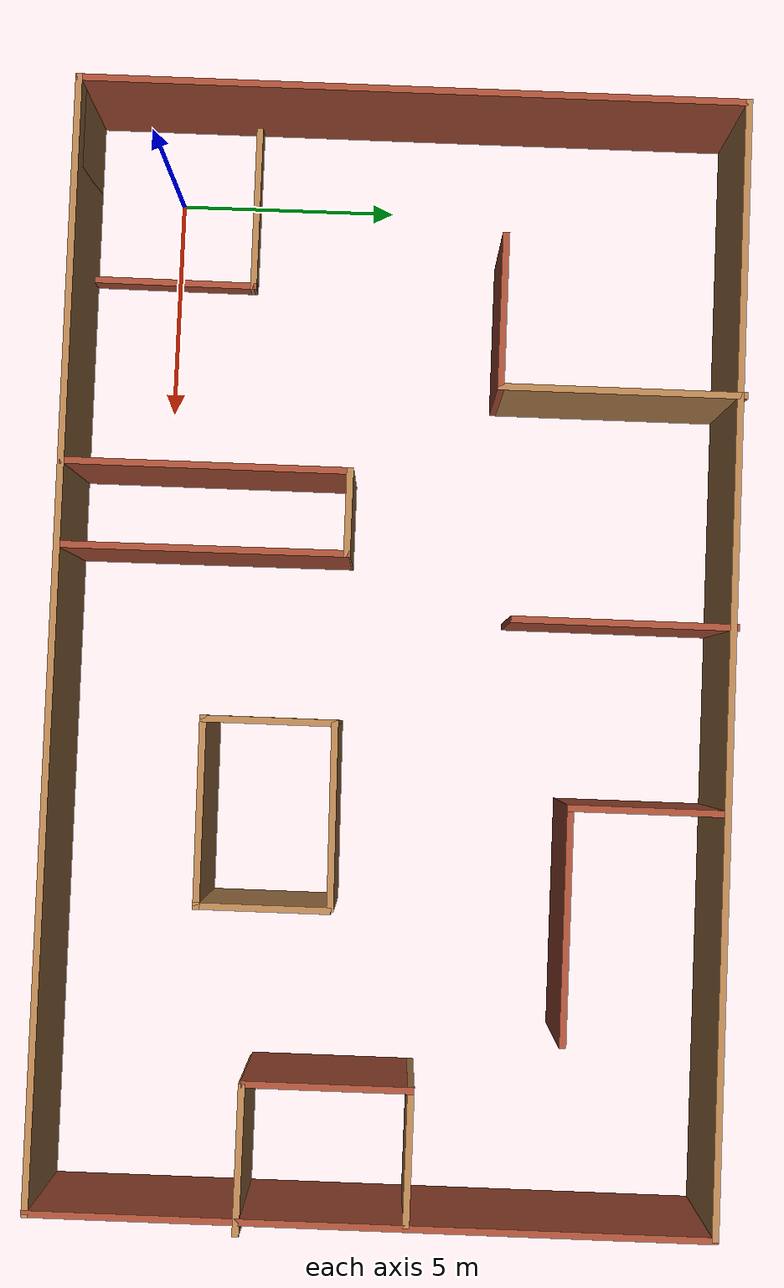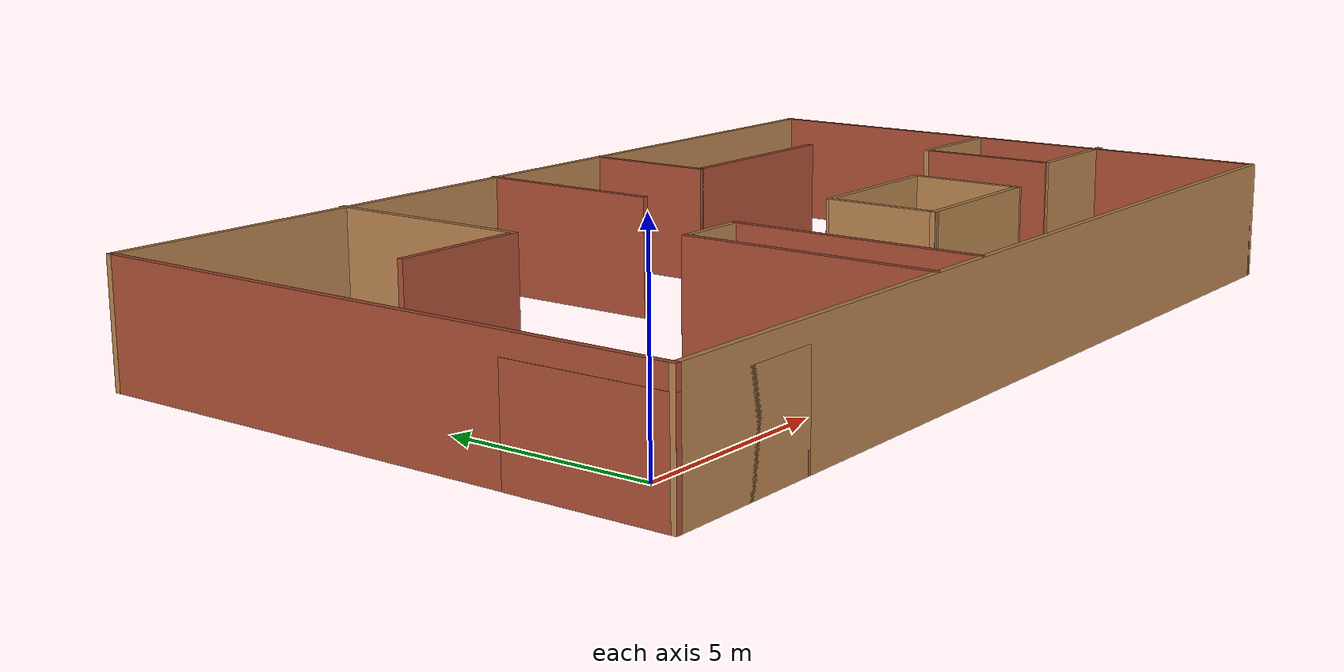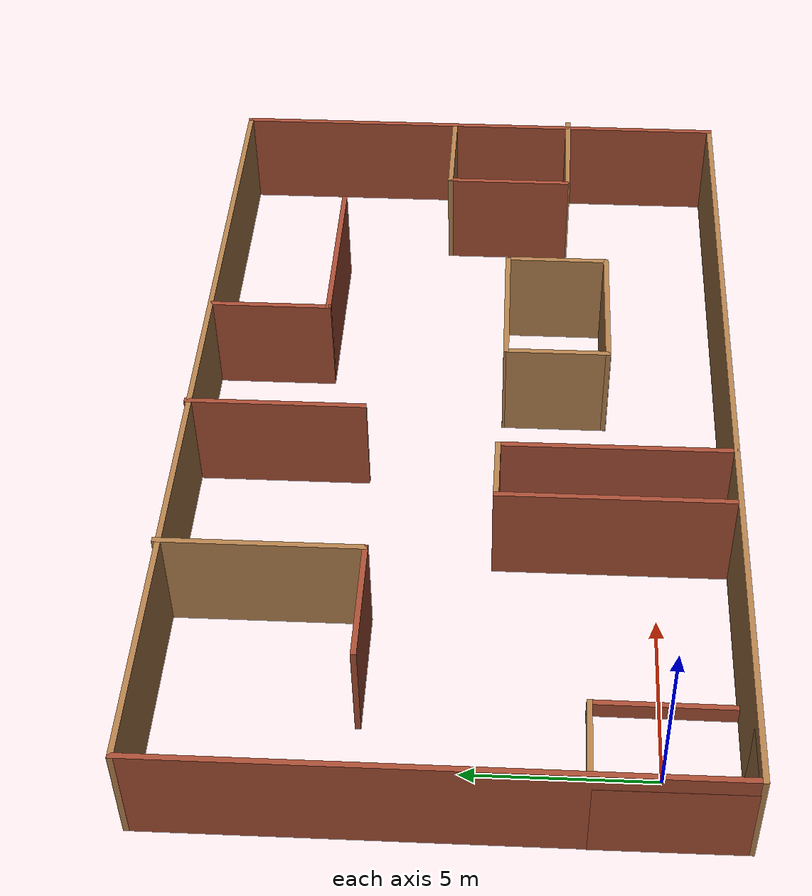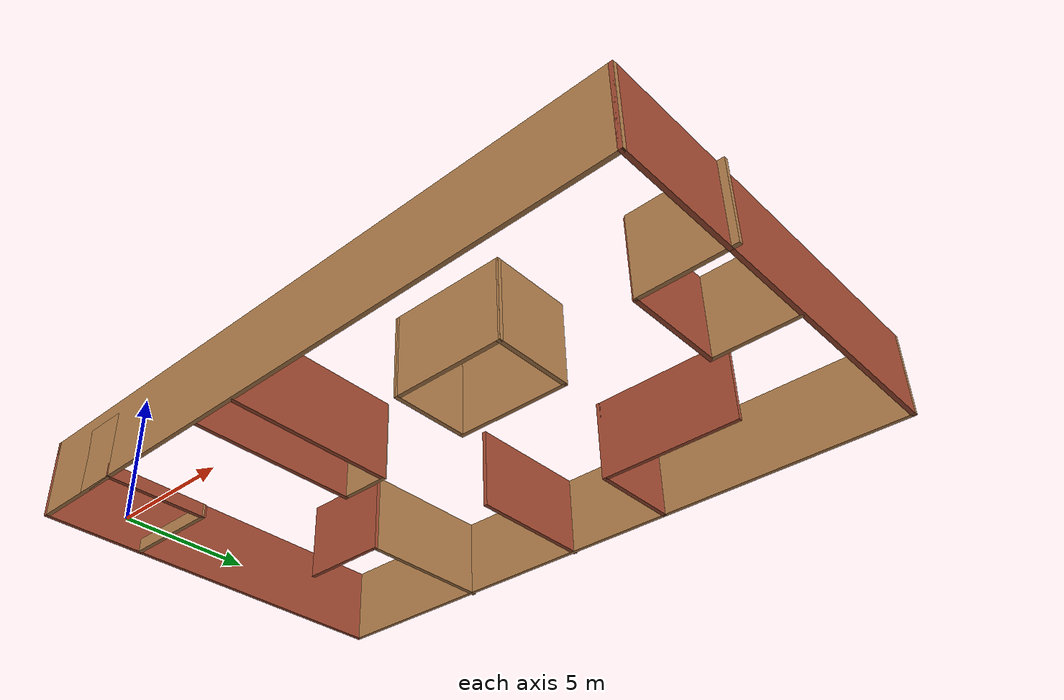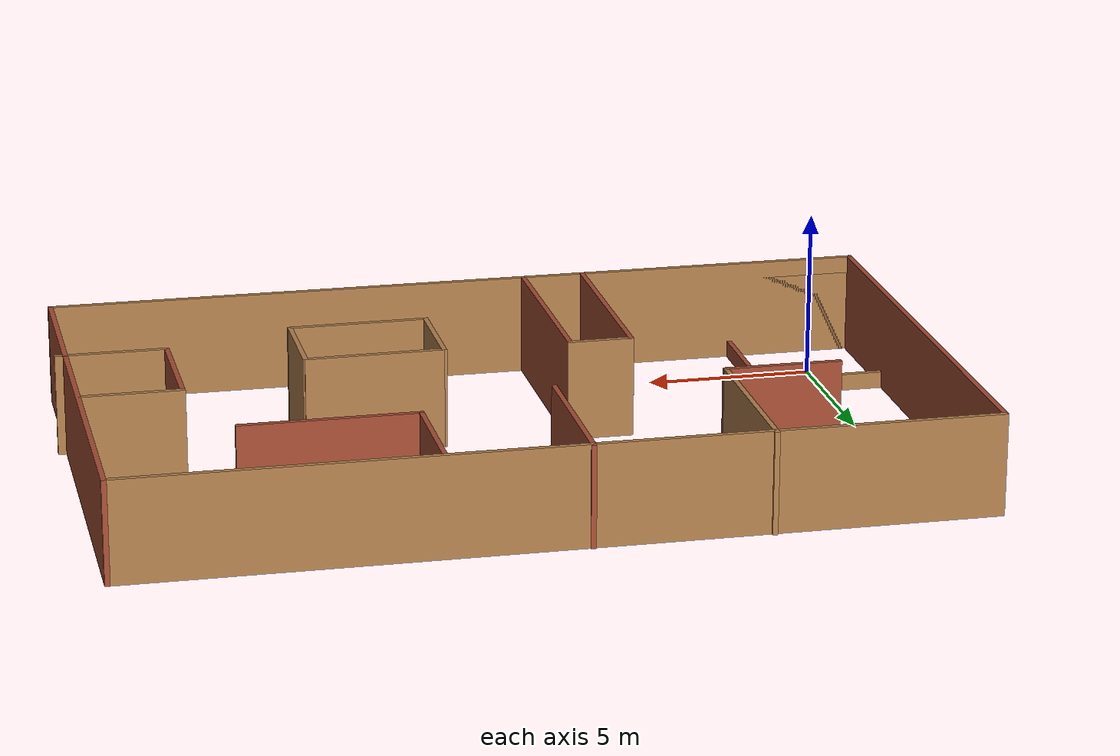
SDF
<?xml version='1.0'?>
<sdf version='1.6'>
  <model name='explore2'>
    <pose frame=''>10.6677 5.43431 0 0 -0 0</pose>
    <link name='Wall_10'>
      <collision name='Wall_10_Collision'>
        <geometry>
          <box>
            <size>3.9659 0.15 2.5</size>
          </box>
        </geometry>
        <pose frame=''>0 0 1.25 0 -0 0</pose>
      </collision>
      <visual name='Wall_10_Visual'>
        <pose frame=''>0 0 1.25 0 -0 0</pose>
        <geometry>
          <box>
            <size>3.9659 0.15 2.5</size>
          </box>
        </geometry>
        <material>
          <script>
            <uri>file://media/materials/scripts/gazebo.material</uri>
            <name>Gazebo/Bricks</name>
          </script>
          <ambient>1 1 1 1</ambient>
        </material>
        <meta>
          <layer>0</layer>
        </meta>
      </visual>
      <pose frame=''>-12.5434 -5.55956 0 0 -0 1.57327</pose>
    </link>
    <link name='Wall_16'>
      <collision name='Wall_16_Collision'>
        <geometry>
          <box>
            <size>25 0.15 3</size>
          </box>
        </geometry>
        <pose frame=''>0 0 1.5 0 -0 0</pose>
      </collision>
      <visual name='Wall_16_Visual'>
        <pose frame=''>0 0 1.5 0 -0 0</pose>
        <geometry>
          <box>
            <size>25 0.15 3</size>
          </box>
        </geometry>
        <material>
          <script>
            <uri>file://media/materials/scripts/gazebo.material</uri>
            <name>Gazebo/Wood</name>
          </script>
          <ambient>1 1 1 1</ambient>
        </material>
        <meta>
          <layer>0</layer>
        </meta>
      </visual>
      <pose frame=''>-0.11382 -7.46731 0 0 -0 0</pose>
    </link>
    <link name='Wall_23'>
      <collision name='Wall_23_Collision'>
        <geometry>
          <box>
            <size>15 0.15 3</size>
          </box>
        </geometry>
        <pose frame=''>0 0 1.5 0 -0 0</pose>
      </collision>
      <visual name='Wall_23_Visual'>
        <pose frame=''>0 0 1.5 0 -0 0</pose>
        <geometry>
          <box>
            <size>15 0.15 3</size>
          </box>
        </geometry>
        <material>
          <script>
            <uri>file://media/materials/scripts/gazebo.material</uri>
            <name>Gazebo/Bricks</name>
          </script>
          <ambient>1 1 1 1</ambient>
        </material>
        <meta>
          <layer>0</layer>
        </meta>
      </visual>
      <pose frame=''>12.3111 -0.042311 0 0 -0 1.5708</pose>
    </link>
    <link name='Wall_25'>
      <collision name='Wall_25_Collision'>
        <geometry>
          <box>
            <size>25 0.15 3</size>
          </box>
        </geometry>
        <pose frame=''>0 0 1.5 0 -0 0</pose>
      </collision>
      <visual name='Wall_25_Visual'>
        <pose frame=''>0 0 1.5 0 -0 0</pose>
        <geometry>
          <box>
            <size>25 0.15 3</size>
          </box>
        </geometry>
        <material>
          <script>
            <uri>file://media/materials/scripts/gazebo.material</uri>
            <name>Gazebo/Wood</name>
          </script>
          <ambient>1 1 1 1</ambient>
        </material>
        <meta>
          <layer>0</layer>
        </meta>
      </visual>
      <pose frame=''>-0.11382 7.38269 0 0 -0 3.14159</pose>
    </link>
    <link name='Wall_27'>
      <collision name='Wall_27_Collision'>
        <geometry>
          <box>
            <size>15 0.15 3</size>
          </box>
        </geometry>
        <pose frame=''>0 0 1.5 0 -0 0</pose>
      </collision>
      <visual name='Wall_27_Visual'>
        <pose frame=''>0 0 1.5 0 -0 0</pose>
        <geometry>
          <box>
            <size>15 0.15 3</size>
          </box>
        </geometry>
        <material>
          <script>
            <uri>file://media/materials/scripts/gazebo.material</uri>
            <name>Gazebo/Bricks</name>
          </script>
          <ambient>1 1 1 1</ambient>
        </material>
        <meta>
          <layer>0</layer>
        </meta>
      </visual>
      <pose frame=''>-12.5387 -0.042311 0 0 -0 -1.5708</pose>
    </link>
    <link name='Wall_29'>
      <collision name='Wall_29_Collision'>
        <geometry>
          <box>
            <size>6.45734 0.15 3</size>
          </box>
        </geometry>
        <pose frame=''>0 0 1.5 0 -0 0</pose>
      </collision>
      <visual name='Wall_29_Visual'>
        <pose frame=''>0 0 1.5 0 -0 0</pose>
        <geometry>
          <box>
            <size>6.45734 0.15 3</size>
          </box>
        </geometry>
        <material>
          <script>
            <uri>file://media/materials/scripts/gazebo.material</uri>
            <name>Gazebo/Bricks</name>
          </script>
          <ambient>1 1 1 1</ambient>
        </material>
        <meta>
          <layer>0</layer>
        </meta>
      </visual>
      <pose frame=''>-4.0012 -4.26931 0 0 -0 1.57096</pose>
    </link>
    <link name='Wall_30'>
      <collision name='Wall_30_Collision'>
        <geometry>
          <box>
            <size>1.97366 0.15 3</size>
          </box>
        </geometry>
        <pose frame=''>0 0 1.5 0 -0 0</pose>
      </collision>
      <visual name='Wall_30_Visual'>
        <pose frame=''>0 0 1.5 0 -0 0</pose>
        <geometry>
          <box>
            <size>1.97366 0.15 3</size>
          </box>
        </geometry>
        <material>
          <script>
            <uri>file://media/materials/scripts/gazebo.material</uri>
            <name>Gazebo/Wood</name>
          </script>
          <ambient>1 1 1 1</ambient>
        </material>
        <meta>
          <layer>0</layer>
        </meta>
      </visual>
      <pose frame=''>-3.08969 -1.11531 0 0 -0 0</pose>
    </link>
    <link name='Wall_31'>
      <collision name='Wall_31_Collision'>
        <geometry>
          <box>
            <size>6.45734 0.15 3</size>
          </box>
        </geometry>
        <pose frame=''>0 0 1.5 0 -0 0</pose>
      </collision>
      <visual name='Wall_31_Visual'>
        <pose frame=''>0 0 1.5 0 -0 0</pose>
        <geometry>
          <box>
            <size>6.45734 0.15 3</size>
          </box>
        </geometry>
        <material>
          <script>
            <uri>file://media/materials/scripts/gazebo.material</uri>
            <name>Gazebo/Bricks</name>
          </script>
          <ambient>1 1 1 1</ambient>
        </material>
        <meta>
          <layer>0</layer>
        </meta>
      </visual>
      <pose frame=''>-2.16419 -4.26931 0 0 -0 -1.56652</pose>
    </link>
    <link name='Wall_33'>
      <collision name='Wall_33_Collision'>
        <geometry>
          <box>
            <size>5.5 0.15 3</size>
          </box>
        </geometry>
        <pose frame=''>0 0 1.5 0 -0 0</pose>
      </collision>
      <visual name='Wall_33_Visual'>
        <pose frame=''>0 0 1.5 0 -0 0</pose>
        <geometry>
          <box>
            <size>5.5 0.15 3</size>
          </box>
        </geometry>
        <material>
          <script>
            <uri>file://media/materials/scripts/gazebo.material</uri>
            <name>Gazebo/Wood</name>
          </script>
          <ambient>1 1 1 1</ambient>
        </material>
        <meta>
          <layer>0</layer>
        </meta>
      </visual>
      <pose frame=''>-5.9947 4.79269 0 0 -0 -1.5708</pose>
    </link>
    <link name='Wall_34'>
      <collision name='Wall_34_Collision'>
        <geometry>
          <box>
            <size>3.5 0.15 3</size>
          </box>
        </geometry>
        <pose frame=''>0 0 1.5 0 -0 0</pose>
      </collision>
      <visual name='Wall_34_Visual'>
        <pose frame=''>0 0 1.5 0 -0 0</pose>
        <geometry>
          <box>
            <size>3.5 0.15 3</size>
          </box>
        </geometry>
        <material>
          <script>
            <uri>file://media/materials/scripts/gazebo.material</uri>
            <name>Gazebo/Bricks</name>
          </script>
          <ambient>1 1 1 1</ambient>
        </material>
        <meta>
          <layer>0</layer>
        </meta>
      </visual>
      <pose frame=''>-7.66969 2.11769 0 0 -0 3.14159</pose>
    </link>
    <link name='Wall_38'>
      <collision name='Wall_38_Collision'>
        <geometry>
          <box>
            <size>3 0.15 3</size>
          </box>
        </geometry>
        <pose frame=''>0 0 1.5 0 -0 0</pose>
      </collision>
      <visual name='Wall_38_Visual'>
        <pose frame=''>0 0 1.5 0 -0 0</pose>
        <geometry>
          <box>
            <size>3 0.15 3</size>
          </box>
        </geometry>
        <material>
          <script>
            <uri>file://media/materials/scripts/gazebo.material</uri>
            <name>Gazebo/Wood</name>
          </script>
          <ambient>1 1 1 1</ambient>
        </material>
        <meta>
          <layer>0</layer>
        </meta>
      </visual>
      <pose frame=''>5.59631 -2.65031 0 0 -0 -1.5708</pose>
    </link>
    <link name='Wall_4'>
      <collision name='Wall_4_Collision'>
        <geometry>
          <box>
            <size>4 0.15 0.5</size>
          </box>
        </geometry>
        <pose frame=''>0 0 0.25 0 -0 0</pose>
      </collision>
      <visual name='Wall_4_Visual'>
        <pose frame=''>0 0 0.25 0 -0 0</pose>
        <geometry>
          <box>
            <size>4 0.15 0.5</size>
          </box>
        </geometry>
        <material>
          <script>
            <uri>file://media/materials/scripts/gazebo.material</uri>
            <name>Gazebo/Wood</name>
          </script>
          <ambient>1 1 1 1</ambient>
        </material>
        <meta>
          <layer>0</layer>
        </meta>
      </visual>
      <pose frame=''>-10.6116 -3.65181 0 0 -0 0</pose>
    </link>
    <link name='Wall_40'>
      <collision name='Wall_40_Collision'>
        <geometry>
          <box>
            <size>5 0.15 3</size>
          </box>
        </geometry>
        <pose frame=''>0 0 1.5 0 -0 0</pose>
      </collision>
      <visual name='Wall_40_Visual'>
        <pose frame=''>0 0 1.5 0 -0 0</pose>
        <geometry>
          <box>
            <size>5 0.15 3</size>
          </box>
        </geometry>
        <material>
          <script>
            <uri>file://media/materials/scripts/gazebo.material</uri>
            <name>Gazebo/Bricks</name>
          </script>
          <ambient>1 1 1 1</ambient>
        </material>
        <meta>
          <layer>0</layer>
        </meta>
      </visual>
      <pose frame=''>-0.889695 5.01769 0 0 -0 -1.5708</pose>
    </link>
    <link name='Wall_42'>
      <collision name='Wall_42_Collision'>
        <geometry>
          <box>
            <size>4.16537 0.15 3</size>
          </box>
        </geometry>
        <pose frame=''>0 0 1.5 0 -0 0</pose>
      </collision>
      <visual name='Wall_42_Visual'>
        <pose frame=''>0 0 1.5 0 -0 0</pose>
        <geometry>
          <box>
            <size>4.16537 0.15 3</size>
          </box>
        </geometry>
        <material>
          <script>
            <uri>file://media/materials/scripts/gazebo.material</uri>
            <name>Gazebo/Wood</name>
          </script>
          <ambient>1 1 1 1</ambient>
        </material>
        <meta>
          <layer>0</layer>
        </meta>
      </visual>
      <pose frame=''>3.54181 -1.19781 0 0 -0 0.013698</pose>
    </link>
    <link name='Wall_44'>
      <collision name='Wall_44_Collision'>
        <geometry>
          <box>
            <size>3.25 0.15 3</size>
          </box>
        </geometry>
        <pose frame=''>0 0 1.5 0 -0 0</pose>
      </collision>
      <visual name='Wall_44_Visual'>
        <pose frame=''>0 0 1.5 0 -0 0</pose>
        <geometry>
          <box>
            <size>3.25 0.15 3</size>
          </box>
        </geometry>
        <material>
          <script>
            <uri>file://media/materials/scripts/gazebo.material</uri>
            <name>Gazebo/Wood</name>
          </script>
          <ambient>1 1 1 1</ambient>
        </material>
        <meta>
          <layer>0</layer>
        </meta>
      </visual>
      <pose frame=''>10.9983 -2.92131 0 0 -0 3.14159</pose>
    </link>
    <link name='Wall_47'>
      <collision name='Wall_47_Collision'>
        <geometry>
          <box>
            <size>3 0.15 3</size>
          </box>
        </geometry>
        <pose frame=''>0 0 1.5 0 -0 0</pose>
      </collision>
      <visual name='Wall_47_Visual'>
        <pose frame=''>0 0 1.5 0 -0 0</pose>
        <geometry>
          <box>
            <size>3 0.15 3</size>
          </box>
        </geometry>
        <material>
          <script>
            <uri>file://media/materials/scripts/gazebo.material</uri>
            <name>Gazebo/Wood</name>
          </script>
          <ambient>1 1 1 1</ambient>
        </material>
        <meta>
          <layer>0</layer>
        </meta>
      </visual>
      <pose frame=''>10.8013 0.731689 0 0 -0 0</pose>
    </link>
    <link name='Wall_49'>
      <collision name='Wall_49_Collision'>
        <geometry>
          <box>
            <size>3.5 0.15 3</size>
          </box>
        </geometry>
        <pose frame=''>0 0 1.5 0 -0 0</pose>
      </collision>
      <visual name='Wall_49_Visual'>
        <pose frame=''>0 0 1.5 0 -0 0</pose>
        <geometry>
          <box>
            <size>3.5 0.15 3</size>
          </box>
        </geometry>
        <material>
          <script>
            <uri>file://media/materials/scripts/gazebo.material</uri>
            <name>Gazebo/Bricks</name>
          </script>
          <ambient>1 1 1 1</ambient>
        </material>
        <meta>
          <layer>0</layer>
        </meta>
      </visual>
      <pose frame=''>3.1703 5.63769 0 0 -0 -1.5708</pose>
    </link>
    <link name='Wall_51'>
      <collision name='Wall_51_Collision'>
        <geometry>
          <box>
            <size>5.25 0.15 3</size>
          </box>
        </geometry>
        <pose frame=''>0 0 1.5 0 -0 0</pose>
      </collision>
      <visual name='Wall_51_Visual'>
        <pose frame=''>0 0 1.5 0 -0 0</pose>
        <geometry>
          <box>
            <size>5.25 0.15 3</size>
          </box>
        </geometry>
        <material>
          <script>
            <uri>file://media/materials/scripts/gazebo.material</uri>
            <name>Gazebo/Bricks</name>
          </script>
          <ambient>1 1 1 1</ambient>
        </material>
        <meta>
          <layer>0</layer>
        </meta>
      </visual>
      <pose frame=''>5.72031 3.96269 0 0 -0 0</pose>
    </link>
    <link name='Wall_53'>
      <collision name='Wall_53_Collision'>
        <geometry>
          <box>
            <size>3.75 0.15 3</size>
          </box>
        </geometry>
        <pose frame=''>0 0 1.5 0 -0 0</pose>
      </collision>
      <visual name='Wall_53_Visual'>
        <pose frame=''>0 0 1.5 0 -0 0</pose>
        <geometry>
          <box>
            <size>3.75 0.15 3</size>
          </box>
        </geometry>
        <material>
          <script>
            <uri>file://media/materials/scripts/gazebo.material</uri>
            <name>Gazebo/Bricks</name>
          </script>
          <ambient>1 1 1 1</ambient>
        </material>
        <meta>
          <layer>0</layer>
        </meta>
      </visual>
      <pose frame=''>9.37631 -1.06831 0 0 -0 -1.5708</pose>
    </link>
    <link name='Wall_58'>
      <collision name='Wall_58_Collision'>
        <geometry>
          <box>
            <size>4.21289 0.15 3</size>
          </box>
        </geometry>
        <pose frame=''>0 0 1.5 0 -0 0</pose>
      </collision>
      <visual name='Wall_58_Visual'>
        <pose frame=''>0 0 1.5 0 -0 0</pose>
        <geometry>
          <box>
            <size>4.21289 0.15 3</size>
          </box>
        </geometry>
        <material>
          <script>
            <uri>file://media/materials/scripts/gazebo.material</uri>
            <name>Gazebo/Wood</name>
          </script>
          <ambient>1 1 1 1</ambient>
        </material>
        <meta>
          <layer>0</layer>
        </meta>
      </visual>
      <pose frame=''>3.5653 -4.08831 0 0 -0 -3.13519</pose>
    </link>
    <link name='Wall_59'>
      <collision name='Wall_59_Collision'>
        <geometry>
          <box>
            <size>3.026 0.15 3</size>
          </box>
        </geometry>
        <pose frame=''>0 0 1.5 0 -0 0</pose>
      </collision>
      <visual name='Wall_59_Visual'>
        <pose frame=''>0 0 1.5 0 -0 0</pose>
        <geometry>
          <box>
            <size>3.026 0.15 3</size>
          </box>
        </geometry>
        <material>
          <script>
            <uri>file://media/materials/scripts/gazebo.material</uri>
            <name>Gazebo/Wood</name>
          </script>
          <ambient>1 1 1 1</ambient>
        </material>
        <meta>
          <layer>0</layer>
        </meta>
      </visual>
      <pose frame=''>1.53431 -2.66331 0 0 -0 1.5708</pose>
    </link>
    <link name='Wall_6'>
      <collision name='Wall_6_Collision'>
        <geometry>
          <box>
            <size>3.96553 0.15 0.5</size>
          </box>
        </geometry>
        <pose frame=''>0 0 0.25 0 -0 0</pose>
      </collision>
      <visual name='Wall_6_Visual'>
        <pose frame=''>0 0 0.25 0 -0 0</pose>
        <geometry>
          <box>
            <size>3.96553 0.15 0.5</size>
          </box>
        </geometry>
        <material>
          <script>
            <uri>file://media/materials/scripts/gazebo.material</uri>
            <name>Gazebo/Bricks</name>
          </script>
          <ambient>1 1 1 1</ambient>
        </material>
        <meta>
          <layer>0</layer>
        </meta>
      </visual>
      <pose frame=''>-8.6936 -5.55956 0 0 -0 -1.57445</pose>
    </link>
    <link name='Wall_9'>
      <collision name='Wall_9_Collision'>
        <geometry>
          <box>
            <size>3.98837 0.15 2.5</size>
          </box>
        </geometry>
        <pose frame=''>0 0 1.25 0 -0 0</pose>
      </collision>
      <visual name='Wall_9_Visual'>
        <pose frame=''>0 0 1.25 0 -0 0</pose>
        <geometry>
          <box>
            <size>3.98837 0.15 2.5</size>
          </box>
        </geometry>
        <material>
          <script>
            <uri>file://media/materials/scripts/gazebo.material</uri>
            <name>Gazebo/Wood</name>
          </script>
          <ambient>1 1 1 1</ambient>
        </material>
        <meta>
          <layer>0</layer>
        </meta>
      </visual>
      <pose frame=''>-10.6196 -7.46731 0 0 -0 3.14159</pose>
    </link>
    <static>1</static>
  </model>
</sdf>
